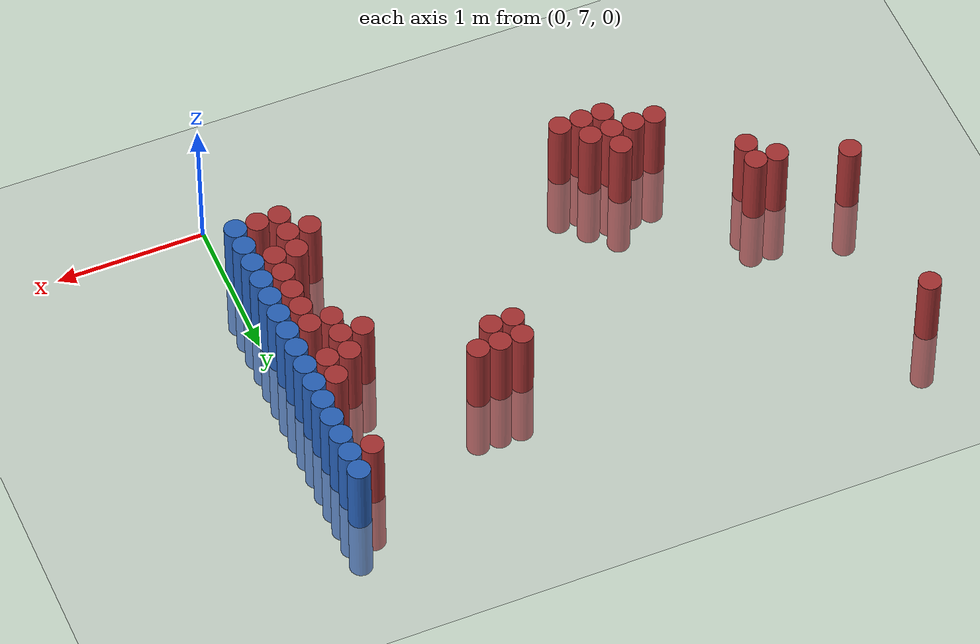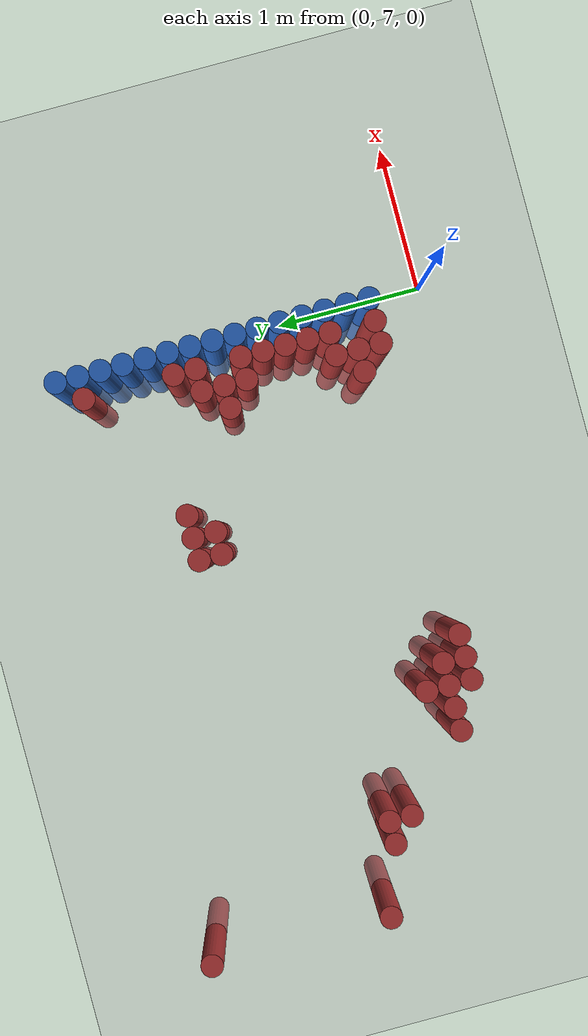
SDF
<sdf version="1.6">
 <world name="default">
  <model name="ground_plane">
   <static>1</static>
   <link name="link">
    <collision name="collision">
     <geometry><plane><normal>0 0 1</normal><size>100 100</size></plane></geometry>
     <surface><friction><ode><mu>100</mu><mu2>50</mu2></ode></friction></surface>
    </collision>
    <visual name="visual">
     <cast_shadows>0</cast_shadows>
     <geometry><plane><normal>0 0 1</normal><size>100 100</size></plane></geometry>
     <material>
      <script><uri>file://media/materials/scripts/gazebo.material</uri><name>Gazebo/Grey</name></script>
     </material>
    </visual>
   </link>
  </model>
  <model name="unit_cylinder_148">
   <static>1</static>
   <pose>-3.975000 8.325000 0.000000 0.000000 0.000000 0.000000</pose>
   <link name="link">
    <inertial>
     <mass>1</mass>
     <inertia><ixx>0.145833</ixx><ixy>0</ixy><ixz>0</ixz><iyy>0.145833</iyy><iyz>0</iyz><izz>0.125</izz></inertia>
    </inertial>
    <collision name="collision">
     <geometry><cylinder><radius>0.075000</radius><length>1</length></cylinder></geometry>
    </collision>
    <visual name="visual">
     <geometry><cylinder><radius>0.075000</radius><length>1</length></cylinder></geometry>
     <material>
      <ambient>0.648000 0.192000 0.192000 1</ambient>
      <diffuse>0.648000 0.192000 0.192000 1</diffuse>
     </material>
     <material>
      <script><name>Gazebo/Grey</name><uri>file://media/materials/scripts/gazebo.material</uri></script>
     </material>
    </visual>
   </link>
  </model>
  <model name="unit_cylinder_149">
   <static>1</static>
   <pose>-3.975000 9.525000 0.000000 0.000000 0.000000 0.000000</pose>
   <link name="link">
    <inertial>
     <mass>1</mass>
     <inertia><ixx>0.145833</ixx><ixy>0</ixy><ixz>0</ixz><iyy>0.145833</iyy><iyz>0</iyz><izz>0.125</izz></inertia>
    </inertial>
    <collision name="collision">
     <geometry><cylinder><radius>0.075000</radius><length>1</length></cylinder></geometry>
    </collision>
    <visual name="visual">
     <geometry><cylinder><radius>0.075000</radius><length>1</length></cylinder></geometry>
     <material>
      <ambient>0.648000 0.192000 0.192000 1</ambient>
      <diffuse>0.648000 0.192000 0.192000 1</diffuse>
     </material>
     <material>
      <script><name>Gazebo/Grey</name><uri>file://media/materials/scripts/gazebo.material</uri></script>
     </material>
    </visual>
   </link>
  </model>
  <model name="unit_cylinder_155">
   <static>1</static>
   <pose>-3.525000 8.175000 0.000000 0.000000 0.000000 0.000000</pose>
   <link name="link">
    <inertial>
     <mass>1</mass>
     <inertia><ixx>0.145833</ixx><ixy>0</ixy><ixz>0</ixz><iyy>0.145833</iyy><iyz>0</iyz><izz>0.125</izz></inertia>
    </inertial>
    <collision name="collision">
     <geometry><cylinder><radius>0.075000</radius><length>1</length></cylinder></geometry>
    </collision>
    <visual name="visual">
     <geometry><cylinder><radius>0.075000</radius><length>1</length></cylinder></geometry>
     <material>
      <ambient>0.648000 0.192000 0.192000 1</ambient>
      <diffuse>0.648000 0.192000 0.192000 1</diffuse>
     </material>
     <material>
      <script><name>Gazebo/Grey</name><uri>file://media/materials/scripts/gazebo.material</uri></script>
     </material>
    </visual>
   </link>
  </model>
  <model name="unit_cylinder_159">
   <static>1</static>
   <pose>-3.375000 8.025000 0.000000 0.000000 0.000000 0.000000</pose>
   <link name="link">
    <inertial>
     <mass>1</mass>
     <inertia><ixx>0.145833</ixx><ixy>0</ixy><ixz>0</ixz><iyy>0.145833</iyy><iyz>0</iyz><izz>0.125</izz></inertia>
    </inertial>
    <collision name="collision">
     <geometry><cylinder><radius>0.075000</radius><length>1</length></cylinder></geometry>
    </collision>
    <visual name="visual">
     <geometry><cylinder><radius>0.075000</radius><length>1</length></cylinder></geometry>
     <material>
      <ambient>0.648000 0.192000 0.192000 1</ambient>
      <diffuse>0.648000 0.192000 0.192000 1</diffuse>
     </material>
     <material>
      <script><name>Gazebo/Grey</name><uri>file://media/materials/scripts/gazebo.material</uri></script>
     </material>
    </visual>
   </link>
  </model>
  <model name="unit_cylinder_160">
   <static>1</static>
   <pose>-3.375000 8.175000 0.000000 0.000000 0.000000 0.000000</pose>
   <link name="link">
    <inertial>
     <mass>1</mass>
     <inertia><ixx>0.145833</ixx><ixy>0</ixy><ixz>0</ixz><iyy>0.145833</iyy><iyz>0</iyz><izz>0.125</izz></inertia>
    </inertial>
    <collision name="collision">
     <geometry><cylinder><radius>0.075000</radius><length>1</length></cylinder></geometry>
    </collision>
    <visual name="visual">
     <geometry><cylinder><radius>0.075000</radius><length>1</length></cylinder></geometry>
     <material>
      <ambient>0.648000 0.192000 0.192000 1</ambient>
      <diffuse>0.648000 0.192000 0.192000 1</diffuse>
     </material>
     <material>
      <script><name>Gazebo/Grey</name><uri>file://media/materials/scripts/gazebo.material</uri></script>
     </material>
    </visual>
   </link>
  </model>
  <model name="unit_cylinder_161">
   <static>1</static>
   <pose>-2.925000 7.575000 0.000000 0.000000 0.000000 0.000000</pose>
   <link name="link">
    <inertial>
     <mass>1</mass>
     <inertia><ixx>0.145833</ixx><ixy>0</ixy><ixz>0</ixz><iyy>0.145833</iyy><iyz>0</iyz><izz>0.125</izz></inertia>
    </inertial>
    <collision name="collision">
     <geometry><cylinder><radius>0.075000</radius><length>1</length></cylinder></geometry>
    </collision>
    <visual name="visual">
     <geometry><cylinder><radius>0.075000</radius><length>1</length></cylinder></geometry>
     <material>
      <ambient>0.648000 0.192000 0.192000 1</ambient>
      <diffuse>0.648000 0.192000 0.192000 1</diffuse>
     </material>
     <material>
      <script><name>Gazebo/Grey</name><uri>file://media/materials/scripts/gazebo.material</uri></script>
     </material>
    </visual>
   </link>
  </model>
  <model name="unit_cylinder_163">
   <static>1</static>
   <pose>-2.775000 7.575000 0.000000 0.000000 0.000000 0.000000</pose>
   <link name="link">
    <inertial>
     <mass>1</mass>
     <inertia><ixx>0.145833</ixx><ixy>0</ixy><ixz>0</ixz><iyy>0.145833</iyy><iyz>0</iyz><izz>0.125</izz></inertia>
    </inertial>
    <collision name="collision">
     <geometry><cylinder><radius>0.075000</radius><length>1</length></cylinder></geometry>
    </collision>
    <visual name="visual">
     <geometry><cylinder><radius>0.075000</radius><length>1</length></cylinder></geometry>
     <material>
      <ambient>0.648000 0.192000 0.192000 1</ambient>
      <diffuse>0.648000 0.192000 0.192000 1</diffuse>
     </material>
     <material>
      <script><name>Gazebo/Grey</name><uri>file://media/materials/scripts/gazebo.material</uri></script>
     </material>
    </visual>
   </link>
  </model>
  <model name="unit_cylinder_167">
   <static>1</static>
   <pose>-2.625000 7.425000 0.000000 0.000000 0.000000 0.000000</pose>
   <link name="link">
    <inertial>
     <mass>1</mass>
     <inertia><ixx>0.145833</ixx><ixy>0</ixy><ixz>0</ixz><iyy>0.145833</iyy><iyz>0</iyz><izz>0.125</izz></inertia>
    </inertial>
    <collision name="collision">
     <geometry><cylinder><radius>0.075000</radius><length>1</length></cylinder></geometry>
    </collision>
    <visual name="visual">
     <geometry><cylinder><radius>0.075000</radius><length>1</length></cylinder></geometry>
     <material>
      <ambient>0.648000 0.192000 0.192000 1</ambient>
      <diffuse>0.648000 0.192000 0.192000 1</diffuse>
     </material>
     <material>
      <script><name>Gazebo/Grey</name><uri>file://media/materials/scripts/gazebo.material</uri></script>
     </material>
    </visual>
   </link>
  </model>
  <model name="unit_cylinder_168">
   <static>1</static>
   <pose>-2.625000 7.575000 0.000000 0.000000 0.000000 0.000000</pose>
   <link name="link">
    <inertial>
     <mass>1</mass>
     <inertia><ixx>0.145833</ixx><ixy>0</ixy><ixz>0</ixz><iyy>0.145833</iyy><iyz>0</iyz><izz>0.125</izz></inertia>
    </inertial>
    <collision name="collision">
     <geometry><cylinder><radius>0.075000</radius><length>1</length></cylinder></geometry>
    </collision>
    <visual name="visual">
     <geometry><cylinder><radius>0.075000</radius><length>1</length></cylinder></geometry>
     <material>
      <ambient>0.648000 0.192000 0.192000 1</ambient>
      <diffuse>0.648000 0.192000 0.192000 1</diffuse>
     </material>
     <material>
      <script><name>Gazebo/Grey</name><uri>file://media/materials/scripts/gazebo.material</uri></script>
     </material>
    </visual>
   </link>
  </model>
  <model name="unit_cylinder_169">
   <static>1</static>
   <pose>-2.625000 7.725000 0.000000 0.000000 0.000000 0.000000</pose>
   <link name="link">
    <inertial>
     <mass>1</mass>
     <inertia><ixx>0.145833</ixx><ixy>0</ixy><ixz>0</ixz><iyy>0.145833</iyy><iyz>0</iyz><izz>0.125</izz></inertia>
    </inertial>
    <collision name="collision">
     <geometry><cylinder><radius>0.075000</radius><length>1</length></cylinder></geometry>
    </collision>
    <visual name="visual">
     <geometry><cylinder><radius>0.075000</radius><length>1</length></cylinder></geometry>
     <material>
      <ambient>0.648000 0.192000 0.192000 1</ambient>
      <diffuse>0.648000 0.192000 0.192000 1</diffuse>
     </material>
     <material>
      <script><name>Gazebo/Grey</name><uri>file://media/materials/scripts/gazebo.material</uri></script>
     </material>
    </visual>
   </link>
  </model>
  <model name="unit_cylinder_171">
   <static>1</static>
   <pose>-2.475000 7.425000 0.000000 0.000000 0.000000 0.000000</pose>
   <link name="link">
    <inertial>
     <mass>1</mass>
     <inertia><ixx>0.145833</ixx><ixy>0</ixy><ixz>0</ixz><iyy>0.145833</iyy><iyz>0</iyz><izz>0.125</izz></inertia>
    </inertial>
    <collision name="collision">
     <geometry><cylinder><radius>0.075000</radius><length>1</length></cylinder></geometry>
    </collision>
    <visual name="visual">
     <geometry><cylinder><radius>0.075000</radius><length>1</length></cylinder></geometry>
     <material>
      <ambient>0.648000 0.192000 0.192000 1</ambient>
      <diffuse>0.648000 0.192000 0.192000 1</diffuse>
     </material>
     <material>
      <script><name>Gazebo/Grey</name><uri>file://media/materials/scripts/gazebo.material</uri></script>
     </material>
    </visual>
   </link>
  </model>
  <model name="unit_cylinder_172">
   <static>1</static>
   <pose>-2.475000 7.575000 0.000000 0.000000 0.000000 0.000000</pose>
   <link name="link">
    <inertial>
     <mass>1</mass>
     <inertia><ixx>0.145833</ixx><ixy>0</ixy><ixz>0</ixz><iyy>0.145833</iyy><iyz>0</iyz><izz>0.125</izz></inertia>
    </inertial>
    <collision name="collision">
     <geometry><cylinder><radius>0.075000</radius><length>1</length></cylinder></geometry>
    </collision>
    <visual name="visual">
     <geometry><cylinder><radius>0.075000</radius><length>1</length></cylinder></geometry>
     <material>
      <ambient>0.648000 0.192000 0.192000 1</ambient>
      <diffuse>0.648000 0.192000 0.192000 1</diffuse>
     </material>
     <material>
      <script><name>Gazebo/Grey</name><uri>file://media/materials/scripts/gazebo.material</uri></script>
     </material>
    </visual>
   </link>
  </model>
  <model name="unit_cylinder_175">
   <static>1</static>
   <pose>-2.325000 7.425000 0.000000 0.000000 0.000000 0.000000</pose>
   <link name="link">
    <inertial>
     <mass>1</mass>
     <inertia><ixx>0.145833</ixx><ixy>0</ixy><ixz>0</ixz><iyy>0.145833</iyy><iyz>0</iyz><izz>0.125</izz></inertia>
    </inertial>
    <collision name="collision">
     <geometry><cylinder><radius>0.075000</radius><length>1</length></cylinder></geometry>
    </collision>
    <visual name="visual">
     <geometry><cylinder><radius>0.075000</radius><length>1</length></cylinder></geometry>
     <material>
      <ambient>0.648000 0.192000 0.192000 1</ambient>
      <diffuse>0.648000 0.192000 0.192000 1</diffuse>
     </material>
     <material>
      <script><name>Gazebo/Grey</name><uri>file://media/materials/scripts/gazebo.material</uri></script>
     </material>
    </visual>
   </link>
  </model>
  <model name="unit_cylinder_183">
   <static>1</static>
   <pose>-1.425000 8.775000 0.000000 0.000000 0.000000 0.000000</pose>
   <link name="link">
    <inertial>
     <mass>1</mass>
     <inertia><ixx>0.145833</ixx><ixy>0</ixy><ixz>0</ixz><iyy>0.145833</iyy><iyz>0</iyz><izz>0.125</izz></inertia>
    </inertial>
    <collision name="collision">
     <geometry><cylinder><radius>0.075000</radius><length>1</length></cylinder></geometry>
    </collision>
    <visual name="visual">
     <geometry><cylinder><radius>0.075000</radius><length>1</length></cylinder></geometry>
     <material>
      <ambient>0.648000 0.192000 0.192000 1</ambient>
      <diffuse>0.648000 0.192000 0.192000 1</diffuse>
     </material>
     <material>
      <script><name>Gazebo/Grey</name><uri>file://media/materials/scripts/gazebo.material</uri></script>
     </material>
    </visual>
   </link>
  </model>
  <model name="unit_cylinder_184">
   <static>1</static>
   <pose>-1.425000 8.925000 0.000000 0.000000 0.000000 0.000000</pose>
   <link name="link">
    <inertial>
     <mass>1</mass>
     <inertia><ixx>0.145833</ixx><ixy>0</ixy><ixz>0</ixz><iyy>0.145833</iyy><iyz>0</iyz><izz>0.125</izz></inertia>
    </inertial>
    <collision name="collision">
     <geometry><cylinder><radius>0.075000</radius><length>1</length></cylinder></geometry>
    </collision>
    <visual name="visual">
     <geometry><cylinder><radius>0.075000</radius><length>1</length></cylinder></geometry>
     <material>
      <ambient>0.648000 0.192000 0.192000 1</ambient>
      <diffuse>0.648000 0.192000 0.192000 1</diffuse>
     </material>
     <material>
      <script><name>Gazebo/Grey</name><uri>file://media/materials/scripts/gazebo.material</uri></script>
     </material>
    </visual>
   </link>
  </model>
  <model name="unit_cylinder_185">
   <static>1</static>
   <pose>-1.275000 8.775000 0.000000 0.000000 0.000000 0.000000</pose>
   <link name="link">
    <inertial>
     <mass>1</mass>
     <inertia><ixx>0.145833</ixx><ixy>0</ixy><ixz>0</ixz><iyy>0.145833</iyy><iyz>0</iyz><izz>0.125</izz></inertia>
    </inertial>
    <collision name="collision">
     <geometry><cylinder><radius>0.075000</radius><length>1</length></cylinder></geometry>
    </collision>
    <visual name="visual">
     <geometry><cylinder><radius>0.075000</radius><length>1</length></cylinder></geometry>
     <material>
      <ambient>0.648000 0.192000 0.192000 1</ambient>
      <diffuse>0.648000 0.192000 0.192000 1</diffuse>
     </material>
     <material>
      <script><name>Gazebo/Grey</name><uri>file://media/materials/scripts/gazebo.material</uri></script>
     </material>
    </visual>
   </link>
  </model>
  <model name="unit_cylinder_186">
   <static>1</static>
   <pose>-1.275000 8.925000 0.000000 0.000000 0.000000 0.000000</pose>
   <link name="link">
    <inertial>
     <mass>1</mass>
     <inertia><ixx>0.145833</ixx><ixy>0</ixy><ixz>0</ixz><iyy>0.145833</iyy><iyz>0</iyz><izz>0.125</izz></inertia>
    </inertial>
    <collision name="collision">
     <geometry><cylinder><radius>0.075000</radius><length>1</length></cylinder></geometry>
    </collision>
    <visual name="visual">
     <geometry><cylinder><radius>0.075000</radius><length>1</length></cylinder></geometry>
     <material>
      <ambient>0.648000 0.192000 0.192000 1</ambient>
      <diffuse>0.648000 0.192000 0.192000 1</diffuse>
     </material>
     <material>
      <script><name>Gazebo/Grey</name><uri>file://media/materials/scripts/gazebo.material</uri></script>
     </material>
    </visual>
   </link>
  </model>
  <model name="unit_cylinder_187">
   <static>1</static>
   <pose>-1.125000 8.925000 0.000000 0.000000 0.000000 0.000000</pose>
   <link name="link">
    <inertial>
     <mass>1</mass>
     <inertia><ixx>0.145833</ixx><ixy>0</ixy><ixz>0</ixz><iyy>0.145833</iyy><iyz>0</iyz><izz>0.125</izz></inertia>
    </inertial>
    <collision name="collision">
     <geometry><cylinder><radius>0.075000</radius><length>1</length></cylinder></geometry>
    </collision>
    <visual name="visual">
     <geometry><cylinder><radius>0.075000</radius><length>1</length></cylinder></geometry>
     <material>
      <ambient>0.648000 0.192000 0.192000 1</ambient>
      <diffuse>0.648000 0.192000 0.192000 1</diffuse>
     </material>
     <material>
      <script><name>Gazebo/Grey</name><uri>file://media/materials/scripts/gazebo.material</uri></script>
     </material>
    </visual>
   </link>
  </model>
  <model name="unit_cylinder_191">
   <static>1</static>
   <pose>-0.525000 7.575000 0.000000 0.000000 0.000000 0.000000</pose>
   <link name="link">
    <inertial>
     <mass>1</mass>
     <inertia><ixx>0.145833</ixx><ixy>0</ixy><ixz>0</ixz><iyy>0.145833</iyy><iyz>0</iyz><izz>0.125</izz></inertia>
    </inertial>
    <collision name="collision">
     <geometry><cylinder><radius>0.075000</radius><length>1</length></cylinder></geometry>
    </collision>
    <visual name="visual">
     <geometry><cylinder><radius>0.075000</radius><length>1</length></cylinder></geometry>
     <material>
      <ambient>0.648000 0.192000 0.192000 1</ambient>
      <diffuse>0.648000 0.192000 0.192000 1</diffuse>
     </material>
     <material>
      <script><name>Gazebo/Grey</name><uri>file://media/materials/scripts/gazebo.material</uri></script>
     </material>
    </visual>
   </link>
  </model>
  <model name="unit_cylinder_192">
   <static>1</static>
   <pose>-0.525000 8.475000 0.000000 0.000000 0.000000 0.000000</pose>
   <link name="link">
    <inertial>
     <mass>1</mass>
     <inertia><ixx>0.145833</ixx><ixy>0</ixy><ixz>0</ixz><iyy>0.145833</iyy><iyz>0</iyz><izz>0.125</izz></inertia>
    </inertial>
    <collision name="collision">
     <geometry><cylinder><radius>0.075000</radius><length>1</length></cylinder></geometry>
    </collision>
    <visual name="visual">
     <geometry><cylinder><radius>0.075000</radius><length>1</length></cylinder></geometry>
     <material>
      <ambient>0.648000 0.192000 0.192000 1</ambient>
      <diffuse>0.648000 0.192000 0.192000 1</diffuse>
     </material>
     <material>
      <script><name>Gazebo/Grey</name><uri>file://media/materials/scripts/gazebo.material</uri></script>
     </material>
    </visual>
   </link>
  </model>
  <model name="unit_cylinder_194">
   <static>1</static>
   <pose>-0.375000 7.425000 0.000000 0.000000 0.000000 0.000000</pose>
   <link name="link">
    <inertial>
     <mass>1</mass>
     <inertia><ixx>0.145833</ixx><ixy>0</ixy><ixz>0</ixz><iyy>0.145833</iyy><iyz>0</iyz><izz>0.125</izz></inertia>
    </inertial>
    <collision name="collision">
     <geometry><cylinder><radius>0.075000</radius><length>1</length></cylinder></geometry>
    </collision>
    <visual name="visual">
     <geometry><cylinder><radius>0.075000</radius><length>1</length></cylinder></geometry>
     <material>
      <ambient>0.648000 0.192000 0.192000 1</ambient>
      <diffuse>0.648000 0.192000 0.192000 1</diffuse>
     </material>
     <material>
      <script><name>Gazebo/Grey</name><uri>file://media/materials/scripts/gazebo.material</uri></script>
     </material>
    </visual>
   </link>
  </model>
  <model name="unit_cylinder_195">
   <static>1</static>
   <pose>-0.375000 7.575000 0.000000 0.000000 0.000000 0.000000</pose>
   <link name="link">
    <inertial>
     <mass>1</mass>
     <inertia><ixx>0.145833</ixx><ixy>0</ixy><ixz>0</ixz><iyy>0.145833</iyy><iyz>0</iyz><izz>0.125</izz></inertia>
    </inertial>
    <collision name="collision">
     <geometry><cylinder><radius>0.075000</radius><length>1</length></cylinder></geometry>
    </collision>
    <visual name="visual">
     <geometry><cylinder><radius>0.075000</radius><length>1</length></cylinder></geometry>
     <material>
      <ambient>0.648000 0.192000 0.192000 1</ambient>
      <diffuse>0.648000 0.192000 0.192000 1</diffuse>
     </material>
     <material>
      <script><name>Gazebo/Grey</name><uri>file://media/materials/scripts/gazebo.material</uri></script>
     </material>
    </visual>
   </link>
  </model>
  <model name="unit_cylinder_196">
   <static>1</static>
   <pose>-0.375000 7.725000 0.000000 0.000000 0.000000 0.000000</pose>
   <link name="link">
    <inertial>
     <mass>1</mass>
     <inertia><ixx>0.145833</ixx><ixy>0</ixy><ixz>0</ixz><iyy>0.145833</iyy><iyz>0</iyz><izz>0.125</izz></inertia>
    </inertial>
    <collision name="collision">
     <geometry><cylinder><radius>0.075000</radius><length>1</length></cylinder></geometry>
    </collision>
    <visual name="visual">
     <geometry><cylinder><radius>0.075000</radius><length>1</length></cylinder></geometry>
     <material>
      <ambient>0.648000 0.192000 0.192000 1</ambient>
      <diffuse>0.648000 0.192000 0.192000 1</diffuse>
     </material>
     <material>
      <script><name>Gazebo/Grey</name><uri>file://media/materials/scripts/gazebo.material</uri></script>
     </material>
    </visual>
   </link>
  </model>
  <model name="unit_cylinder_197">
   <static>1</static>
   <pose>-0.375000 8.325000 0.000000 0.000000 0.000000 0.000000</pose>
   <link name="link">
    <inertial>
     <mass>1</mass>
     <inertia><ixx>0.145833</ixx><ixy>0</ixy><ixz>0</ixz><iyy>0.145833</iyy><iyz>0</iyz><izz>0.125</izz></inertia>
    </inertial>
    <collision name="collision">
     <geometry><cylinder><radius>0.075000</radius><length>1</length></cylinder></geometry>
    </collision>
    <visual name="visual">
     <geometry><cylinder><radius>0.075000</radius><length>1</length></cylinder></geometry>
     <material>
      <ambient>0.648000 0.192000 0.192000 1</ambient>
      <diffuse>0.648000 0.192000 0.192000 1</diffuse>
     </material>
     <material>
      <script><name>Gazebo/Grey</name><uri>file://media/materials/scripts/gazebo.material</uri></script>
     </material>
    </visual>
   </link>
  </model>
  <model name="unit_cylinder_198">
   <static>1</static>
   <pose>-0.375000 8.475000 0.000000 0.000000 0.000000 0.000000</pose>
   <link name="link">
    <inertial>
     <mass>1</mass>
     <inertia><ixx>0.145833</ixx><ixy>0</ixy><ixz>0</ixz><iyy>0.145833</iyy><iyz>0</iyz><izz>0.125</izz></inertia>
    </inertial>
    <collision name="collision">
     <geometry><cylinder><radius>0.075000</radius><length>1</length></cylinder></geometry>
    </collision>
    <visual name="visual">
     <geometry><cylinder><radius>0.075000</radius><length>1</length></cylinder></geometry>
     <material>
      <ambient>0.648000 0.192000 0.192000 1</ambient>
      <diffuse>0.648000 0.192000 0.192000 1</diffuse>
     </material>
     <material>
      <script><name>Gazebo/Grey</name><uri>file://media/materials/scripts/gazebo.material</uri></script>
     </material>
    </visual>
   </link>
  </model>
  <model name="unit_cylinder_199">
   <static>1</static>
   <pose>-0.375000 8.625000 0.000000 0.000000 0.000000 0.000000</pose>
   <link name="link">
    <inertial>
     <mass>1</mass>
     <inertia><ixx>0.145833</ixx><ixy>0</ixy><ixz>0</ixz><iyy>0.145833</iyy><iyz>0</iyz><izz>0.125</izz></inertia>
    </inertial>
    <collision name="collision">
     <geometry><cylinder><radius>0.075000</radius><length>1</length></cylinder></geometry>
    </collision>
    <visual name="visual">
     <geometry><cylinder><radius>0.075000</radius><length>1</length></cylinder></geometry>
     <material>
      <ambient>0.648000 0.192000 0.192000 1</ambient>
      <diffuse>0.648000 0.192000 0.192000 1</diffuse>
     </material>
     <material>
      <script><name>Gazebo/Grey</name><uri>file://media/materials/scripts/gazebo.material</uri></script>
     </material>
    </visual>
   </link>
  </model>
  <model name="unit_cylinder_211">
   <static>1</static>
   <pose>-0.225000 7.425000 0.000000 0.000000 0.000000 0.000000</pose>
   <link name="link">
    <inertial>
     <mass>1</mass>
     <inertia><ixx>0.145833</ixx><ixy>0</ixy><ixz>0</ixz><iyy>0.145833</iyy><iyz>0</iyz><izz>0.125</izz></inertia>
    </inertial>
    <collision name="collision">
     <geometry><cylinder><radius>0.075000</radius><length>1</length></cylinder></geometry>
    </collision>
    <visual name="visual">
     <geometry><cylinder><radius>0.075000</radius><length>1</length></cylinder></geometry>
     <material>
      <ambient>0.648000 0.192000 0.192000 1</ambient>
      <diffuse>0.648000 0.192000 0.192000 1</diffuse>
     </material>
     <material>
      <script><name>Gazebo/Grey</name><uri>file://media/materials/scripts/gazebo.material</uri></script>
     </material>
    </visual>
   </link>
  </model>
  <model name="unit_cylinder_212">
   <static>1</static>
   <pose>-0.225000 7.725000 0.000000 0.000000 0.000000 0.000000</pose>
   <link name="link">
    <inertial>
     <mass>1</mass>
     <inertia><ixx>0.145833</ixx><ixy>0</ixy><ixz>0</ixz><iyy>0.145833</iyy><iyz>0</iyz><izz>0.125</izz></inertia>
    </inertial>
    <collision name="collision">
     <geometry><cylinder><radius>0.075000</radius><length>1</length></cylinder></geometry>
    </collision>
    <visual name="visual">
     <geometry><cylinder><radius>0.075000</radius><length>1</length></cylinder></geometry>
     <material>
      <ambient>0.648000 0.192000 0.192000 1</ambient>
      <diffuse>0.648000 0.192000 0.192000 1</diffuse>
     </material>
     <material>
      <script><name>Gazebo/Grey</name><uri>file://media/materials/scripts/gazebo.material</uri></script>
     </material>
    </visual>
   </link>
  </model>
  <model name="unit_cylinder_213">
   <static>1</static>
   <pose>-0.225000 7.875000 0.000000 0.000000 0.000000 0.000000</pose>
   <link name="link">
    <inertial>
     <mass>1</mass>
     <inertia><ixx>0.145833</ixx><ixy>0</ixy><ixz>0</ixz><iyy>0.145833</iyy><iyz>0</iyz><izz>0.125</izz></inertia>
    </inertial>
    <collision name="collision">
     <geometry><cylinder><radius>0.075000</radius><length>1</length></cylinder></geometry>
    </collision>
    <visual name="visual">
     <geometry><cylinder><radius>0.075000</radius><length>1</length></cylinder></geometry>
     <material>
      <ambient>0.648000 0.192000 0.192000 1</ambient>
      <diffuse>0.648000 0.192000 0.192000 1</diffuse>
     </material>
     <material>
      <script><name>Gazebo/Grey</name><uri>file://media/materials/scripts/gazebo.material</uri></script>
     </material>
    </visual>
   </link>
  </model>
  <model name="unit_cylinder_214">
   <static>1</static>
   <pose>-0.225000 8.025000 0.000000 0.000000 0.000000 0.000000</pose>
   <link name="link">
    <inertial>
     <mass>1</mass>
     <inertia><ixx>0.145833</ixx><ixy>0</ixy><ixz>0</ixz><iyy>0.145833</iyy><iyz>0</iyz><izz>0.125</izz></inertia>
    </inertial>
    <collision name="collision">
     <geometry><cylinder><radius>0.075000</radius><length>1</length></cylinder></geometry>
    </collision>
    <visual name="visual">
     <geometry><cylinder><radius>0.075000</radius><length>1</length></cylinder></geometry>
     <material>
      <ambient>0.648000 0.192000 0.192000 1</ambient>
      <diffuse>0.648000 0.192000 0.192000 1</diffuse>
     </material>
     <material>
      <script><name>Gazebo/Grey</name><uri>file://media/materials/scripts/gazebo.material</uri></script>
     </material>
    </visual>
   </link>
  </model>
  <model name="unit_cylinder_215">
   <static>1</static>
   <pose>-0.225000 8.175000 0.000000 0.000000 0.000000 0.000000</pose>
   <link name="link">
    <inertial>
     <mass>1</mass>
     <inertia><ixx>0.145833</ixx><ixy>0</ixy><ixz>0</ixz><iyy>0.145833</iyy><iyz>0</iyz><izz>0.125</izz></inertia>
    </inertial>
    <collision name="collision">
     <geometry><cylinder><radius>0.075000</radius><length>1</length></cylinder></geometry>
    </collision>
    <visual name="visual">
     <geometry><cylinder><radius>0.075000</radius><length>1</length></cylinder></geometry>
     <material>
      <ambient>0.648000 0.192000 0.192000 1</ambient>
      <diffuse>0.648000 0.192000 0.192000 1</diffuse>
     </material>
     <material>
      <script><name>Gazebo/Grey</name><uri>file://media/materials/scripts/gazebo.material</uri></script>
     </material>
    </visual>
   </link>
  </model>
  <model name="unit_cylinder_216">
   <static>1</static>
   <pose>-0.225000 8.325000 0.000000 0.000000 0.000000 0.000000</pose>
   <link name="link">
    <inertial>
     <mass>1</mass>
     <inertia><ixx>0.145833</ixx><ixy>0</ixy><ixz>0</ixz><iyy>0.145833</iyy><iyz>0</iyz><izz>0.125</izz></inertia>
    </inertial>
    <collision name="collision">
     <geometry><cylinder><radius>0.075000</radius><length>1</length></cylinder></geometry>
    </collision>
    <visual name="visual">
     <geometry><cylinder><radius>0.075000</radius><length>1</length></cylinder></geometry>
     <material>
      <ambient>0.648000 0.192000 0.192000 1</ambient>
      <diffuse>0.648000 0.192000 0.192000 1</diffuse>
     </material>
     <material>
      <script><name>Gazebo/Grey</name><uri>file://media/materials/scripts/gazebo.material</uri></script>
     </material>
    </visual>
   </link>
  </model>
  <model name="unit_cylinder_217">
   <static>1</static>
   <pose>-0.225000 8.625000 0.000000 0.000000 0.000000 0.000000</pose>
   <link name="link">
    <inertial>
     <mass>1</mass>
     <inertia><ixx>0.145833</ixx><ixy>0</ixy><ixz>0</ixz><iyy>0.145833</iyy><iyz>0</iyz><izz>0.125</izz></inertia>
    </inertial>
    <collision name="collision">
     <geometry><cylinder><radius>0.075000</radius><length>1</length></cylinder></geometry>
    </collision>
    <visual name="visual">
     <geometry><cylinder><radius>0.075000</radius><length>1</length></cylinder></geometry>
     <material>
      <ambient>0.648000 0.192000 0.192000 1</ambient>
      <diffuse>0.648000 0.192000 0.192000 1</diffuse>
     </material>
     <material>
      <script><name>Gazebo/Grey</name><uri>file://media/materials/scripts/gazebo.material</uri></script>
     </material>
    </visual>
   </link>
  </model>
  <model name="unit_cylinder_218">
   <static>1</static>
   <pose>-0.225000 8.775000 0.000000 0.000000 0.000000 0.000000</pose>
   <link name="link">
    <inertial>
     <mass>1</mass>
     <inertia><ixx>0.145833</ixx><ixy>0</ixy><ixz>0</ixz><iyy>0.145833</iyy><iyz>0</iyz><izz>0.125</izz></inertia>
    </inertial>
    <collision name="collision">
     <geometry><cylinder><radius>0.075000</radius><length>1</length></cylinder></geometry>
    </collision>
    <visual name="visual">
     <geometry><cylinder><radius>0.075000</radius><length>1</length></cylinder></geometry>
     <material>
      <ambient>0.648000 0.192000 0.192000 1</ambient>
      <diffuse>0.648000 0.192000 0.192000 1</diffuse>
     </material>
     <material>
      <script><name>Gazebo/Grey</name><uri>file://media/materials/scripts/gazebo.material</uri></script>
     </material>
    </visual>
   </link>
  </model>
  <model name="unit_cylinder_219">
   <static>1</static>
   <pose>-0.225000 9.375000 0.000000 0.000000 0.000000 0.000000</pose>
   <link name="link">
    <inertial>
     <mass>1</mass>
     <inertia><ixx>0.145833</ixx><ixy>0</ixy><ixz>0</ixz><iyy>0.145833</iyy><iyz>0</iyz><izz>0.125</izz></inertia>
    </inertial>
    <collision name="collision">
     <geometry><cylinder><radius>0.075000</radius><length>1</length></cylinder></geometry>
    </collision>
    <visual name="visual">
     <geometry><cylinder><radius>0.075000</radius><length>1</length></cylinder></geometry>
     <material>
      <ambient>0.648000 0.192000 0.192000 1</ambient>
      <diffuse>0.648000 0.192000 0.192000 1</diffuse>
     </material>
     <material>
      <script><name>Gazebo/Grey</name><uri>file://media/materials/scripts/gazebo.material</uri></script>
     </material>
    </visual>
   </link>
  </model>
  <model name="unit_cylinder_235">
   <static>1</static>
   <pose>-0.075000 7.425000 0.000000 0.000000 0.000000 0.000000</pose>
   <link name="link">
    <inertial>
     <mass>1</mass>
     <inertia><ixx>0.145833</ixx><ixy>0</ixy><ixz>0</ixz><iyy>0.145833</iyy><iyz>0</iyz><izz>0.125</izz></inertia>
    </inertial>
    <collision name="collision">
     <geometry><cylinder><radius>0.075000</radius><length>1</length></cylinder></geometry>
    </collision>
    <visual name="visual">
     <geometry><cylinder><radius>0.075000</radius><length>1</length></cylinder></geometry>
     <material>
      <ambient>0.152000 0.379000 0.720000 1</ambient>
      <diffuse>0.152000 0.379000 0.720000 1</diffuse>
     </material>
     <material>
      <script><name>Gazebo/Grey</name><uri>file://media/materials/scripts/gazebo.material</uri></script>
     </material>
    </visual>
   </link>
  </model>
  <model name="unit_cylinder_236">
   <static>1</static>
   <pose>-0.075000 7.575000 0.000000 0.000000 0.000000 0.000000</pose>
   <link name="link">
    <inertial>
     <mass>1</mass>
     <inertia><ixx>0.145833</ixx><ixy>0</ixy><ixz>0</ixz><iyy>0.145833</iyy><iyz>0</iyz><izz>0.125</izz></inertia>
    </inertial>
    <collision name="collision">
     <geometry><cylinder><radius>0.075000</radius><length>1</length></cylinder></geometry>
    </collision>
    <visual name="visual">
     <geometry><cylinder><radius>0.075000</radius><length>1</length></cylinder></geometry>
     <material>
      <ambient>0.152000 0.379000 0.720000 1</ambient>
      <diffuse>0.152000 0.379000 0.720000 1</diffuse>
     </material>
     <material>
      <script><name>Gazebo/Grey</name><uri>file://media/materials/scripts/gazebo.material</uri></script>
     </material>
    </visual>
   </link>
  </model>
  <model name="unit_cylinder_237">
   <static>1</static>
   <pose>-0.075000 7.725000 0.000000 0.000000 0.000000 0.000000</pose>
   <link name="link">
    <inertial>
     <mass>1</mass>
     <inertia><ixx>0.145833</ixx><ixy>0</ixy><ixz>0</ixz><iyy>0.145833</iyy><iyz>0</iyz><izz>0.125</izz></inertia>
    </inertial>
    <collision name="collision">
     <geometry><cylinder><radius>0.075000</radius><length>1</length></cylinder></geometry>
    </collision>
    <visual name="visual">
     <geometry><cylinder><radius>0.075000</radius><length>1</length></cylinder></geometry>
     <material>
      <ambient>0.152000 0.379000 0.720000 1</ambient>
      <diffuse>0.152000 0.379000 0.720000 1</diffuse>
     </material>
     <material>
      <script><name>Gazebo/Grey</name><uri>file://media/materials/scripts/gazebo.material</uri></script>
     </material>
    </visual>
   </link>
  </model>
  <model name="unit_cylinder_238">
   <static>1</static>
   <pose>-0.075000 7.875000 0.000000 0.000000 0.000000 0.000000</pose>
   <link name="link">
    <inertial>
     <mass>1</mass>
     <inertia><ixx>0.145833</ixx><ixy>0</ixy><ixz>0</ixz><iyy>0.145833</iyy><iyz>0</iyz><izz>0.125</izz></inertia>
    </inertial>
    <collision name="collision">
     <geometry><cylinder><radius>0.075000</radius><length>1</length></cylinder></geometry>
    </collision>
    <visual name="visual">
     <geometry><cylinder><radius>0.075000</radius><length>1</length></cylinder></geometry>
     <material>
      <ambient>0.152000 0.379000 0.720000 1</ambient>
      <diffuse>0.152000 0.379000 0.720000 1</diffuse>
     </material>
     <material>
      <script><name>Gazebo/Grey</name><uri>file://media/materials/scripts/gazebo.material</uri></script>
     </material>
    </visual>
   </link>
  </model>
  <model name="unit_cylinder_239">
   <static>1</static>
   <pose>-0.075000 8.025000 0.000000 0.000000 0.000000 0.000000</pose>
   <link name="link">
    <inertial>
     <mass>1</mass>
     <inertia><ixx>0.145833</ixx><ixy>0</ixy><ixz>0</ixz><iyy>0.145833</iyy><iyz>0</iyz><izz>0.125</izz></inertia>
    </inertial>
    <collision name="collision">
     <geometry><cylinder><radius>0.075000</radius><length>1</length></cylinder></geometry>
    </collision>
    <visual name="visual">
     <geometry><cylinder><radius>0.075000</radius><length>1</length></cylinder></geometry>
     <material>
      <ambient>0.152000 0.379000 0.720000 1</ambient>
      <diffuse>0.152000 0.379000 0.720000 1</diffuse>
     </material>
     <material>
      <script><name>Gazebo/Grey</name><uri>file://media/materials/scripts/gazebo.material</uri></script>
     </material>
    </visual>
   </link>
  </model>
  <model name="unit_cylinder_240">
   <static>1</static>
   <pose>-0.075000 8.175000 0.000000 0.000000 0.000000 0.000000</pose>
   <link name="link">
    <inertial>
     <mass>1</mass>
     <inertia><ixx>0.145833</ixx><ixy>0</ixy><ixz>0</ixz><iyy>0.145833</iyy><iyz>0</iyz><izz>0.125</izz></inertia>
    </inertial>
    <collision name="collision">
     <geometry><cylinder><radius>0.075000</radius><length>1</length></cylinder></geometry>
    </collision>
    <visual name="visual">
     <geometry><cylinder><radius>0.075000</radius><length>1</length></cylinder></geometry>
     <material>
      <ambient>0.152000 0.379000 0.720000 1</ambient>
      <diffuse>0.152000 0.379000 0.720000 1</diffuse>
     </material>
     <material>
      <script><name>Gazebo/Grey</name><uri>file://media/materials/scripts/gazebo.material</uri></script>
     </material>
    </visual>
   </link>
  </model>
  <model name="unit_cylinder_241">
   <static>1</static>
   <pose>-0.075000 8.325000 0.000000 0.000000 0.000000 0.000000</pose>
   <link name="link">
    <inertial>
     <mass>1</mass>
     <inertia><ixx>0.145833</ixx><ixy>0</ixy><ixz>0</ixz><iyy>0.145833</iyy><iyz>0</iyz><izz>0.125</izz></inertia>
    </inertial>
    <collision name="collision">
     <geometry><cylinder><radius>0.075000</radius><length>1</length></cylinder></geometry>
    </collision>
    <visual name="visual">
     <geometry><cylinder><radius>0.075000</radius><length>1</length></cylinder></geometry>
     <material>
      <ambient>0.152000 0.379000 0.720000 1</ambient>
      <diffuse>0.152000 0.379000 0.720000 1</diffuse>
     </material>
     <material>
      <script><name>Gazebo/Grey</name><uri>file://media/materials/scripts/gazebo.material</uri></script>
     </material>
    </visual>
   </link>
  </model>
  <model name="unit_cylinder_242">
   <static>1</static>
   <pose>-0.075000 8.475000 0.000000 0.000000 0.000000 0.000000</pose>
   <link name="link">
    <inertial>
     <mass>1</mass>
     <inertia><ixx>0.145833</ixx><ixy>0</ixy><ixz>0</ixz><iyy>0.145833</iyy><iyz>0</iyz><izz>0.125</izz></inertia>
    </inertial>
    <collision name="collision">
     <geometry><cylinder><radius>0.075000</radius><length>1</length></cylinder></geometry>
    </collision>
    <visual name="visual">
     <geometry><cylinder><radius>0.075000</radius><length>1</length></cylinder></geometry>
     <material>
      <ambient>0.152000 0.379000 0.720000 1</ambient>
      <diffuse>0.152000 0.379000 0.720000 1</diffuse>
     </material>
     <material>
      <script><name>Gazebo/Grey</name><uri>file://media/materials/scripts/gazebo.material</uri></script>
     </material>
    </visual>
   </link>
  </model>
  <model name="unit_cylinder_243">
   <static>1</static>
   <pose>-0.075000 8.625000 0.000000 0.000000 0.000000 0.000000</pose>
   <link name="link">
    <inertial>
     <mass>1</mass>
     <inertia><ixx>0.145833</ixx><ixy>0</ixy><ixz>0</ixz><iyy>0.145833</iyy><iyz>0</iyz><izz>0.125</izz></inertia>
    </inertial>
    <collision name="collision">
     <geometry><cylinder><radius>0.075000</radius><length>1</length></cylinder></geometry>
    </collision>
    <visual name="visual">
     <geometry><cylinder><radius>0.075000</radius><length>1</length></cylinder></geometry>
     <material>
      <ambient>0.152000 0.379000 0.720000 1</ambient>
      <diffuse>0.152000 0.379000 0.720000 1</diffuse>
     </material>
     <material>
      <script><name>Gazebo/Grey</name><uri>file://media/materials/scripts/gazebo.material</uri></script>
     </material>
    </visual>
   </link>
  </model>
  <model name="unit_cylinder_244">
   <static>1</static>
   <pose>-0.075000 8.775000 0.000000 0.000000 0.000000 0.000000</pose>
   <link name="link">
    <inertial>
     <mass>1</mass>
     <inertia><ixx>0.145833</ixx><ixy>0</ixy><ixz>0</ixz><iyy>0.145833</iyy><iyz>0</iyz><izz>0.125</izz></inertia>
    </inertial>
    <collision name="collision">
     <geometry><cylinder><radius>0.075000</radius><length>1</length></cylinder></geometry>
    </collision>
    <visual name="visual">
     <geometry><cylinder><radius>0.075000</radius><length>1</length></cylinder></geometry>
     <material>
      <ambient>0.152000 0.379000 0.720000 1</ambient>
      <diffuse>0.152000 0.379000 0.720000 1</diffuse>
     </material>
     <material>
      <script><name>Gazebo/Grey</name><uri>file://media/materials/scripts/gazebo.material</uri></script>
     </material>
    </visual>
   </link>
  </model>
  <model name="unit_cylinder_245">
   <static>1</static>
   <pose>-0.075000 8.925000 0.000000 0.000000 0.000000 0.000000</pose>
   <link name="link">
    <inertial>
     <mass>1</mass>
     <inertia><ixx>0.145833</ixx><ixy>0</ixy><ixz>0</ixz><iyy>0.145833</iyy><iyz>0</iyz><izz>0.125</izz></inertia>
    </inertial>
    <collision name="collision">
     <geometry><cylinder><radius>0.075000</radius><length>1</length></cylinder></geometry>
    </collision>
    <visual name="visual">
     <geometry><cylinder><radius>0.075000</radius><length>1</length></cylinder></geometry>
     <material>
      <ambient>0.152000 0.379000 0.720000 1</ambient>
      <diffuse>0.152000 0.379000 0.720000 1</diffuse>
     </material>
     <material>
      <script><name>Gazebo/Grey</name><uri>file://media/materials/scripts/gazebo.material</uri></script>
     </material>
    </visual>
   </link>
  </model>
  <model name="unit_cylinder_246">
   <static>1</static>
   <pose>-0.075000 9.075000 0.000000 0.000000 0.000000 0.000000</pose>
   <link name="link">
    <inertial>
     <mass>1</mass>
     <inertia><ixx>0.145833</ixx><ixy>0</ixy><ixz>0</ixz><iyy>0.145833</iyy><iyz>0</iyz><izz>0.125</izz></inertia>
    </inertial>
    <collision name="collision">
     <geometry><cylinder><radius>0.075000</radius><length>1</length></cylinder></geometry>
    </collision>
    <visual name="visual">
     <geometry><cylinder><radius>0.075000</radius><length>1</length></cylinder></geometry>
     <material>
      <ambient>0.152000 0.379000 0.720000 1</ambient>
      <diffuse>0.152000 0.379000 0.720000 1</diffuse>
     </material>
     <material>
      <script><name>Gazebo/Grey</name><uri>file://media/materials/scripts/gazebo.material</uri></script>
     </material>
    </visual>
   </link>
  </model>
  <model name="unit_cylinder_247">
   <static>1</static>
   <pose>-0.075000 9.225000 0.000000 0.000000 0.000000 0.000000</pose>
   <link name="link">
    <inertial>
     <mass>1</mass>
     <inertia><ixx>0.145833</ixx><ixy>0</ixy><ixz>0</ixz><iyy>0.145833</iyy><iyz>0</iyz><izz>0.125</izz></inertia>
    </inertial>
    <collision name="collision">
     <geometry><cylinder><radius>0.075000</radius><length>1</length></cylinder></geometry>
    </collision>
    <visual name="visual">
     <geometry><cylinder><radius>0.075000</radius><length>1</length></cylinder></geometry>
     <material>
      <ambient>0.152000 0.379000 0.720000 1</ambient>
      <diffuse>0.152000 0.379000 0.720000 1</diffuse>
     </material>
     <material>
      <script><name>Gazebo/Grey</name><uri>file://media/materials/scripts/gazebo.material</uri></script>
     </material>
    </visual>
   </link>
  </model>
  <model name="unit_cylinder_248">
   <static>1</static>
   <pose>-0.075000 9.375000 0.000000 0.000000 0.000000 0.000000</pose>
   <link name="link">
    <inertial>
     <mass>1</mass>
     <inertia><ixx>0.145833</ixx><ixy>0</ixy><ixz>0</ixz><iyy>0.145833</iyy><iyz>0</iyz><izz>0.125</izz></inertia>
    </inertial>
    <collision name="collision">
     <geometry><cylinder><radius>0.075000</radius><length>1</length></cylinder></geometry>
    </collision>
    <visual name="visual">
     <geometry><cylinder><radius>0.075000</radius><length>1</length></cylinder></geometry>
     <material>
      <ambient>0.152000 0.379000 0.720000 1</ambient>
      <diffuse>0.152000 0.379000 0.720000 1</diffuse>
     </material>
     <material>
      <script><name>Gazebo/Grey</name><uri>file://media/materials/scripts/gazebo.material</uri></script>
     </material>
    </visual>
   </link>
  </model>
  <model name="unit_cylinder_249">
   <static>1</static>
   <pose>-0.075000 9.525000 0.000000 0.000000 0.000000 0.000000</pose>
   <link name="link">
    <inertial>
     <mass>1</mass>
     <inertia><ixx>0.145833</ixx><ixy>0</ixy><ixz>0</ixz><iyy>0.145833</iyy><iyz>0</iyz><izz>0.125</izz></inertia>
    </inertial>
    <collision name="collision">
     <geometry><cylinder><radius>0.075000</radius><length>1</length></cylinder></geometry>
    </collision>
    <visual name="visual">
     <geometry><cylinder><radius>0.075000</radius><length>1</length></cylinder></geometry>
     <material>
      <ambient>0.152000 0.379000 0.720000 1</ambient>
      <diffuse>0.152000 0.379000 0.720000 1</diffuse>
     </material>
     <material>
      <script><name>Gazebo/Grey</name><uri>file://media/materials/scripts/gazebo.material</uri></script>
     </material>
    </visual>
   </link>
  </model>
 </world>
</sdf>
